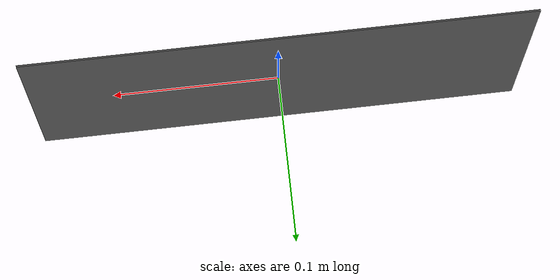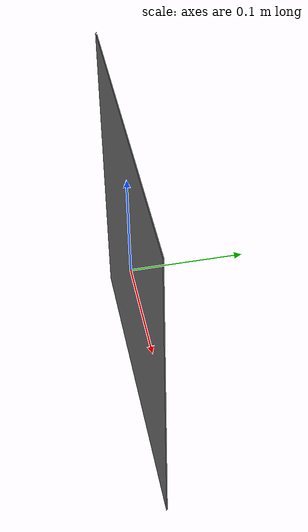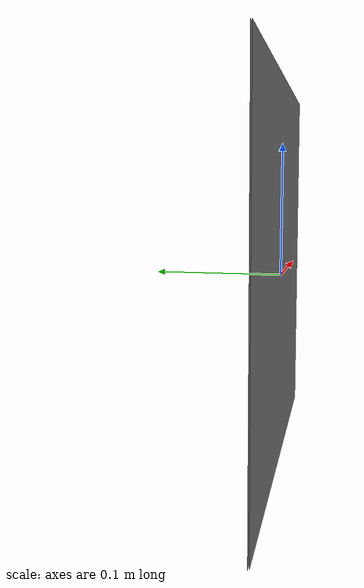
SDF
<?xml version="1.0" ?>
<sdf version="1.4">
  <model name="mc_sign_ar_tag">
    <static>true</static>
    <link name="sign_link">
      <pose>0 0 0 1.5708 0 0</pose>
      <collision name="sign_collision">
        <geometry>
          <mesh>
            <uri>model://ar_tag/meshes/maskor_city_sign_ar_tag_A.dae</uri>
            <scale>1 1 1</scale>
          </mesh>
        </geometry>
      </collision>
      <visual name="sign_visual">
        <geometry>
          <mesh>
            <uri>model://ar_tag/meshes/maskor_city_sign_ar_tag_A.dae</uri>
            <scale>1 1 1</scale>
          </mesh>
        </geometry>
       <material>
          <script>
            <uri>model://ar_tag/materials/scripts</uri>
            <uri>model://ar_tag/materials/textures</uri>
            <name>ARTag/NumberA</name>
          </script>
        </material>
      </visual>
    </link>

 <link name="sign_link">
      <pose>0 0 0 1.5708 0 0</pose>
      <collision name="sign_collision">
        <geometry>
          <mesh>
            <uri>model://ar_tag/meshes/maskor_city_sign_ar_tag_B.dae</uri>
            <scale>1 1 1</scale>
          </mesh>
        </geometry>
      </collision>
      <visual name="sign_visual">
        <geometry>
          <mesh>
            <uri>model://ar_tag/meshes/maskor_city_sign_ar_tag_B.dae</uri>
            <scale>1 1 1</scale>
          </mesh>
        </geometry>
       <material>
          <script>
            <uri>model://ar_tag/materials/scripts</uri>
            <uri>model://ar_tag/materials/textures</uri>
            <name>ARTag/NumberB</name>
          </script>
        </material>
      </visual>
    </link>
  </model>
</sdf>
